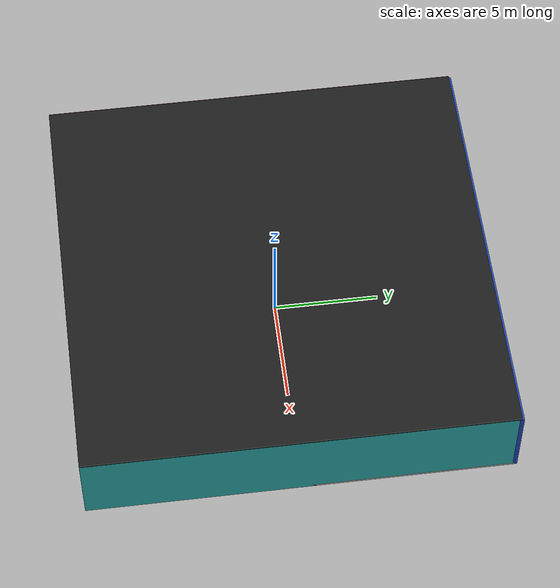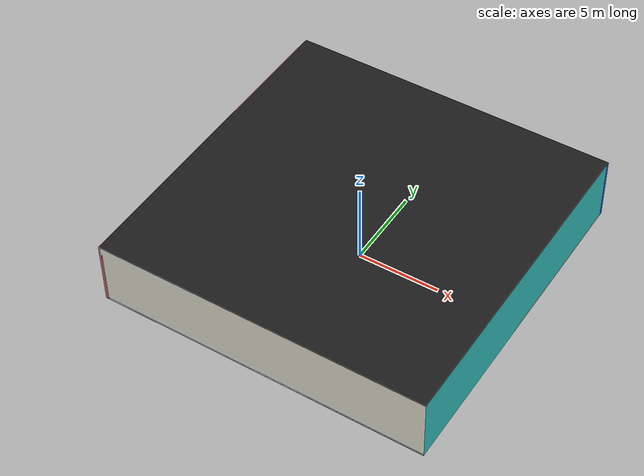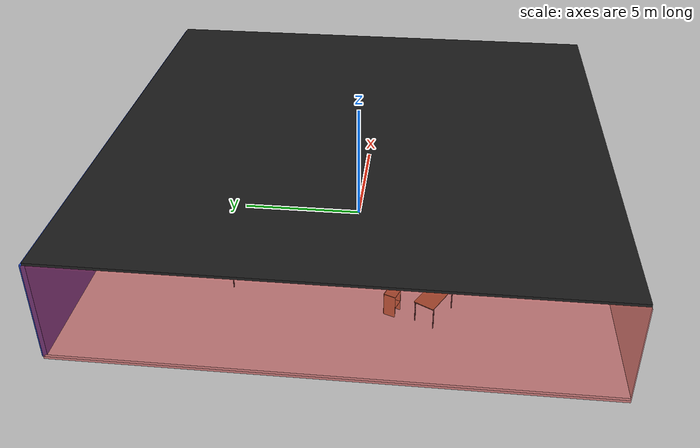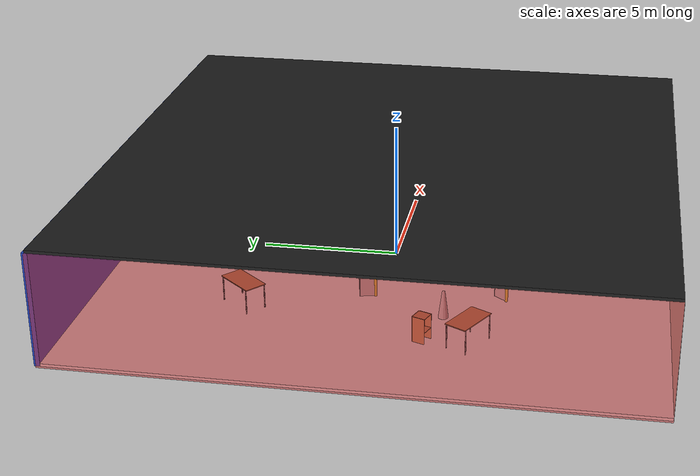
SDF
<sdf version="1.4">
 <world name="default">
  <physics type="ode">
   <max_step_size>0.001</max_step_size>
   <real_time_factor>1</real_time_factor>
   <real_time_update_rate>1000</real_time_update_rate>
   <gravity>0 0 -9.8</gravity>
  </physics>
  <scene><ambient>0.4 0.4 0.4 1</ambient><background>0.7 0.7 0.7 1</background><shadows>1</shadows></scene>
  <model name="Surrounding">
   <static>1</static>
   <link name="Ceiling">
    <collision name="Ceiling_Collision"><geometry><box><size>20 20 0.1</size></box></geometry></collision>
    <visual name="Ceiling_Visual">
     <geometry><box><size>20 20 0.1</size></box></geometry>
     <material>
      <script><uri>file://media/materials/scripts/gazebo.material</uri><name>Gazebo/Black</name></script>
     </material>
    </visual>
    <pose>0 0 4.05 0 0 0</pose>
   </link>
   <link name="Wall_South">
    <collision name="Wall_South_Collision">
     <geometry><box><size>20 0 4</size></box></geometry>
     <pose>0 0 2 0 -0 0</pose>
    </collision>
    <visual name="Wall_South_Visual">
     <pose>0 0 2 0 -0 0</pose>
     <geometry><box><size>20 0 4</size></box></geometry>
     <material>
      <script><uri>file://media/materials/scripts/gazebo.material</uri><name>Gazebo/PaintedWall</name></script>
     </material>
    </visual>
    <velocity_decay><linear>0</linear><angular>0</angular></velocity_decay>
    <pose>0 -10 0 0 -0 0</pose>
   </link>
   <link name="Wall_East">
    <collision name="Wall_21_Collision">
     <geometry><box><size>20 0 4</size></box></geometry>
     <pose>0 0 2 0 -0 0</pose>
    </collision>
    <visual name="Wall_21_Visual">
     <pose>0 0 2 0 -0 0</pose>
     <geometry><box><size>20 0 4</size></box></geometry>
     <material>
      <script>
       <uri>file://media/materials/scripts/gazebo.material</uri>
       <name>Gazebo/TurquoiseGlowOutline</name>
      </script>
     </material>
    </visual>
    <velocity_decay><linear>0</linear><angular>0</angular></velocity_decay>
    <pose>10 0 0 0 -0 1.5708</pose>
   </link>
   <link name="Wall_North">
    <collision name="Wall_22_Collision">
     <geometry><box><size>20 0.2 4</size></box></geometry>
     <pose>0 0 2 0 -0 0</pose>
    </collision>
    <visual name="Wall_22_Visual">
     <pose>0 0 2 0 -0 0</pose>
     <geometry><box><size>20 0.2 4</size></box></geometry>
     <material>
      <script><uri>file://media/materials/scripts/gazebo.material</uri><name>Gazebo/Blue</name></script>
     </material>
    </visual>
    <velocity_decay><linear>0</linear><angular>0</angular></velocity_decay>
    <pose>0 10 0 0 -0 0</pose>
   </link>
   <link name="Wall_West">
    <collision name="Wall_23_Collision">
     <geometry><box><size>20 0.2 4</size></box></geometry>
     <pose>0 0 2 0 -0 0</pose>
    </collision>
    <visual name="Wall_23_Visual">
     <pose>0 0 2 0 -0 0</pose>
     <geometry><box><size>20 0.2 4</size></box></geometry>
     <material>
      <script><uri>file://media/materials/scripts/gazebo.material</uri><name>Gazebo/RedTransparent</name></script>
     </material>
    </visual>
    <velocity_decay><linear>0</linear><angular>0</angular></velocity_decay>
    <pose>-10 0 0 0 0 -1.5708</pose>
   </link>
   <link name="Ground_link">
    <collision name="collision">
     <pose>0 0 .05 0 -0 0</pose>
     <geometry><box><size>20 20 0.1</size></box></geometry>
    </collision>
    <visual name="visual">
     <pose>0 0 .05 0 -0 0</pose>
     <geometry><box><size>20 20 0.1</size></box></geometry>
     <material>
      <script><uri>file://media/materials/scripts/gazebo.material</uri><name>Gazebo/WhiteGlow</name></script>
     </material>
    </visual>
   </link>
   <static>1</static>
  </model>
  <spherical_coordinates>
   <surface_model>EARTH_WGS84</surface_model>
   <latitude_deg>0</latitude_deg>
   <longitude_deg>0</longitude_deg>
   <elevation>0</elevation>
   <heading_deg>0</heading_deg>
  </spherical_coordinates>
  <light name="lightball_0" type="diffuse">
   <diffuse>0.8 0.8 0.8 1</diffuse>
   <specular>0.2 0.2 0.2 1</specular>
   <attenuation>
    <range>100</range>
    <constant>0.7</constant>
    <linear>0.01</linear>
    <quadratic>0.001</quadratic>
   </attenuation>
   <direction>-0.5 0.1 -0.9</direction>
   <pose>0.320979190077 -0.855541098117 1.49449770296 0 0 0</pose>
  </light>
  <light name="lightball_1" type="diffuse">
   <diffuse>0.8 0.8 0.8 1</diffuse>
   <specular>0.2 0.2 0.2 1</specular>
   <attenuation>
    <range>100</range>
    <constant>0.7</constant>
    <linear>0.01</linear>
    <quadratic>0.001</quadratic>
   </attenuation>
   <direction>-0.5 0.1 -0.9</direction>
   <pose>-8.40888492643 4.91509880951 1.42877655758 0 0 0</pose>
  </light>
  <light name="lightball_2" type="diffuse">
   <diffuse>0.8 0.8 0.8 1</diffuse>
   <specular>0.2 0.2 0.2 1</specular>
   <attenuation>
    <range>100</range>
    <constant>0.7</constant>
    <linear>0.01</linear>
    <quadratic>0.001</quadratic>
   </attenuation>
   <direction>-0.5 0.1 -0.9</direction>
   <pose>-8.8382978898 -0.576153870328 3.21475240196 0 0 0</pose>
  </light>
  <light name="lightball_3" type="diffuse">
   <diffuse>0.8 0.8 0.8 1</diffuse>
   <specular>0.2 0.2 0.2 1</specular>
   <attenuation>
    <range>100</range>
    <constant>0.7</constant>
    <linear>0.01</linear>
    <quadratic>0.001</quadratic>
   </attenuation>
   <direction>-0.5 0.1 -0.9</direction>
   <pose>1.42345505857 4.82423537291 3.71061835667 0 0 0</pose>
  </light>
  <light name="lightball_4" type="diffuse">
   <diffuse>0.8 0.8 0.8 1</diffuse>
   <specular>0.2 0.2 0.2 1</specular>
   <attenuation>
    <range>100</range>
    <constant>0.7</constant>
    <linear>0.01</linear>
    <quadratic>0.001</quadratic>
   </attenuation>
   <direction>-0.5 0.1 -0.9</direction>
   <pose>-9.74574745872 -9.54090377068 1.90263038081 0 0 0</pose>
  </light>
  <light name="lightball_5" type="diffuse">
   <diffuse>0.8 0.8 0.8 1</diffuse>
   <specular>0.2 0.2 0.2 1</specular>
   <attenuation>
    <range>100</range>
    <constant>0.7</constant>
    <linear>0.01</linear>
    <quadratic>0.001</quadratic>
   </attenuation>
   <direction>-0.5 0.1 -0.9</direction>
   <pose>0.258606938676 -2.40805389669 3.74760890292 0 0 0</pose>
  </light>
  <light name="lightball_6" type="diffuse">
   <diffuse>0.8 0.8 0.8 1</diffuse>
   <specular>0.2 0.2 0.2 1</specular>
   <attenuation>
    <range>100</range>
    <constant>0.7</constant>
    <linear>0.01</linear>
    <quadratic>0.001</quadratic>
   </attenuation>
   <direction>-0.5 0.1 -0.9</direction>
   <pose>-2.3738885297 4.2999413824 1.65822907636 0 0 0</pose>
  </light>
  <light name="lightball_7" type="diffuse">
   <diffuse>0.8 0.8 0.8 1</diffuse>
   <specular>0.2 0.2 0.2 1</specular>
   <attenuation>
    <range>100</range>
    <constant>0.7</constant>
    <linear>0.01</linear>
    <quadratic>0.001</quadratic>
   </attenuation>
   <direction>-0.5 0.1 -0.9</direction>
   <pose>4.88623314357 -0.25491431763 1.2876094149 0 0 0</pose>
  </light>
  <light name="lightball_8" type="diffuse">
   <diffuse>0.8 0.8 0.8 1</diffuse>
   <specular>0.2 0.2 0.2 1</specular>
   <attenuation>
    <range>100</range>
    <constant>0.7</constant>
    <linear>0.01</linear>
    <quadratic>0.001</quadratic>
   </attenuation>
   <direction>-0.5 0.1 -0.9</direction>
   <pose>-8.81629042907 -9.38959572827 3.00592686252 0 0 0</pose>
  </light>
  <light name="lightball_9" type="diffuse">
   <diffuse>0.8 0.8 0.8 1</diffuse>
   <specular>0.2 0.2 0.2 1</specular>
   <attenuation>
    <range>100</range>
    <constant>0.7</constant>
    <linear>0.01</linear>
    <quadratic>0.001</quadratic>
   </attenuation>
   <direction>-0.5 0.1 -0.9</direction>
   <pose>0.276183916004 4.09411334176 2.91106350986 0 0 0</pose>
  </light>
  <include><uri>model://table</uri><pose>-6.47730001351 -3.42052531307 0 0 0 2.64125058893</pose></include>
  <include><uri>model://cabinet</uri><pose>-6.51058227978 -1.89773302912 0 0 0 1.20364973226</pose></include>
  <include>
   <uri>model://construction_cone</uri>
   <pose>-4.84088977801 -2.39414138658 0 0 0 2.24258486106</pose>
  </include>
  <include><uri>model://table</uri><pose>-4.9539612344 4.52062227211 0 0 0 0.862378148946</pose></include>
  <include>
   <uri>model://robocup_3Dsim_goal</uri>
   <pose>-2.52382946459 -5.05518852234 0 0 0 0.906795007161</pose>
  </include>
  <include>
   <uri>model://robocup_3Dsim_goal</uri>
   <pose>-2.62347710831 0.352966228209 0 0 0 1.77978438504</pose>
  </include>
  <include>
   <uri>model://construction_cone</uri>
   <pose>-1.52642710231 5.52314806945 0 0 0 2.86995057196</pose>
  </include>
  <include><uri>model://table</uri><pose>1.5473910563 5.04724865105 0 0 0 1.24350328172</pose></include>
 </world>
</sdf>

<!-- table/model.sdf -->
<sdf version="1.5">
  <model name="table">
    <static>true</static>
    <link name="link">
      <collision name="surface">
        <pose>0 0 1.0 0 0 0</pose>
        <geometry>
          <box>
            <size>1.5 0.8 0.03</size>
          </box>
        </geometry>
        <surface>
          <friction>
            <ode>
              <mu>0.6</mu>
              <mu2>0.6</mu2>
            </ode>
          </friction>
        </surface>
      </collision>
      <visual name="visual1">
        <pose>0 0 1.0 0 0 0</pose>
        <geometry>
          <box>
            <size>1.5 0.8 0.03</size>
          </box>
        </geometry>
        <material>
          <script>
            <uri>model://media/materials/scripts/gazebo.material</uri>
            <name>Gazebo/Wood</name>
          </script>
        </material>
      </visual>
      <collision name="front_left_leg">
        <pose>0.68 0.38 0.5 0 0 0</pose>
        <geometry>
          <cylinder>
            <radius>0.02</radius>
            <length>1.0</length>
          </cylinder>
        </geometry>
      </collision>
      <visual name="front_left_leg">
        <pose>0.68 0.38 0.5 0 0 0</pose>
        <geometry>
          <cylinder>
            <radius>0.02</radius>
            <length>1.0</length>
          </cylinder>
        </geometry>
        <material>
          <script>
            <uri>model://media/materials/scripts/gazebo.material</uri>
            <name>Gazebo/Grey</name>
          </script>
        </material>
      </visual>
      <collision name="front_right_leg">
        <pose>0.68 -0.38 0.5 0 0 0</pose>
        <geometry>
          <cylinder>
            <radius>0.02</radius>
            <length>1.0</length>
          </cylinder>
        </geometry>
      </collision>
      <visual name="front_right_leg">
        <pose>0.68 -0.38 0.5 0 0 0</pose>
        <geometry>
          <cylinder>
            <radius>0.02</radius>
            <length>1.0</length>
          </cylinder>
        </geometry>
        <material>
          <script>
            <uri>model://media/materials/scripts/gazebo.material</uri>
            <name>Gazebo/Grey</name>
          </script>
        </material>
      </visual>
      <collision name="back_right_leg">
        <pose>-0.68 -0.38 0.5 0 0 0</pose>
        <geometry>
          <cylinder>
            <radius>0.02</radius>
            <length>1.0</length>
          </cylinder>
        </geometry>
      </collision>
      <visual name="back_right_leg">
        <pose>-0.68 -0.38 0.5 0 0 0</pose>
        <geometry>
          <cylinder>
            <radius>0.02</radius>
            <length>1.0</length>
          </cylinder>
        </geometry>
        <material>
          <script>
            <uri>model://media/materials/scripts/gazebo.material</uri>
            <name>Gazebo/Grey</name>
          </script>
        </material>
      </visual>
      <collision name="back_left_leg">
        <pose>-0.68 0.38 0.5 0 0 0</pose>
        <geometry>
          <cylinder>
            <radius>0.02</radius>
            <length>1.0</length>
          </cylinder>
        </geometry>
      </collision>
      <visual name="back_left_leg">
        <pose>-0.68 0.38 0.5 0 0 0</pose>
        <geometry>
          <cylinder>
            <radius>0.02</radius>
            <length>1.0</length>
          </cylinder>
        </geometry>
        <material>
          <script>
            <uri>model://media/materials/scripts/gazebo.material</uri>
            <name>Gazebo/Grey</name>
          </script>
        </material>
      </visual>
    </link>
  </model>
</sdf>

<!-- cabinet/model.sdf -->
<sdf version="1.5">
  <model name="cabinet">
    <static>true</static>
    <link name="cabinet_bottom_plate">
      <inertial>
        <pose>0 0 -1 0 0 0</pose>
        <inertia>
          <ixx>2.050000</ixx>
          <ixy>0</ixy>
          <ixz>0</ixz>
          <iyy>2.050000</iyy>
          <iyz>0</iyz>
          <izz>2.050000</izz>
        </inertia>
        <mass>25.000000</mass>
      </inertial>
      <collision name="cabinet_bottom_plate_geom">
        <pose>0 0 0.010000 0 0 0</pose>
        <geometry>
          <box>
            <size>0.450000 0.450000 0.020000</size>
          </box>
        </geometry>
      </collision>
      <visual name="cabinet_bottom_plate_geom_visual">
        <pose>0 0 0.010000 0 0 0</pose>
        <geometry>
          <box>
            <size>0.450000 0.450000 0.020000</size>
          </box>
        </geometry>
        <material>
          <script>
            <uri>model://media/materials/scripts/gazebo.material</uri>
            <name>Gazebo/Wood</name>
          </script>
        </material>
      </visual>
      <collision name="cabinet_bottom_plate_geom_cabinet_back_plate">
        <pose>0.235000 0 0.510000 0 0 0</pose>
        <geometry>
          <box>
            <size>0.020000 0.450000 1.020000</size>
          </box>
        </geometry>
      </collision>
      <visual name="cabinet_bottom_plate_geom_cabinet_back_plate_visual">
        <pose>0.235000 0 0.510000 0 0 0</pose>
        <geometry>
          <box>
            <size>0.020000 0.450000 1.020000</size>
          </box>
        </geometry>
        <material>
          <script>
            <uri>model://media/materials/scripts/gazebo.material</uri>
            <name>Gazebo/Wood</name>
          </script>
        </material>
      </visual>
      <collision name="cabinet_bottom_plate_geom_cabinet_left_plate">
        <pose>0 0.235000 0.510000 0 0 0</pose>
        <geometry>
          <box>
            <size>0.450000 0.020000 1.020000</size>
          </box>
        </geometry>
      </collision>
      <visual name="cabinet_bottom_plate_geom_cabinet_left_plate_visual">
        <pose>0 0.235000 0.510000 0 0 0</pose>
        <geometry>
          <box>
            <size>0.450000 0.020000 1.020000</size>
          </box>
        </geometry>
        <material>
          <script>
            <uri>model://media/materials/scripts/gazebo.material</uri>
            <name>Gazebo/Wood</name>
          </script>
        </material>
      </visual>
      <collision name="cabinet_bottom_plate_geom_cabinet_middle_plate">
        <pose>0 0 0.510000 0 0 0</pose>
        <geometry>
          <box>
            <size>0.450000 0.450000 0.020000</size>
          </box>
        </geometry>
      </collision>
      <visual name="cabinet_bottom_plate_geom_cabinet_middle_plate_visual">
        <pose>0 0 0.510000 0 0 0</pose>
        <geometry>
          <box>
            <size>0.450000 0.450000 0.020000</size>
          </box>
        </geometry>
        <material>
          <script>
            <uri>model://media/materials/scripts/gazebo.material</uri>
            <name>Gazebo/Wood</name>
          </script>
        </material>
      </visual>
      <collision name="cabinet_bottom_plate_geom_cabinet_right_plate">
        <pose>0 -0.235000 0.510000 0 0 0</pose>
        <geometry>
          <box>
            <size>0.450000 0.020000 1.020000</size>
          </box>
        </geometry>
      </collision>
      <visual name="cabinet_bottom_plate_geom_cabinet_right_plate_visual">
        <pose>0 -0.235000 0.510000 0 0 0</pose>
        <geometry>
          <box>
            <size>0.450000 0.020000 1.020000</size>
          </box>
        </geometry>
        <material>
          <script>
            <uri>model://media/materials/scripts/gazebo.material</uri>
            <name>Gazebo/Wood</name>
          </script>
        </material>
      </visual>
      <collision name="cabinet_bottom_plate_geom_cabinet_top_plate">
        <pose>0 0 1.010000 0 0 0</pose>
        <geometry>
          <box>
            <size>0.450000 0.450000 0.020000</size>
          </box>
        </geometry>
      </collision>
      <visual name="cabinet_bottom_plate_geom_cabinet_top_plate_visual">
        <pose>0 0 1.010000 0 0 0</pose>
        <geometry>
          <box>
            <size>0.450000 0.450000 0.020000</size>
          </box>
        </geometry>
        <material>
          <script>
            <uri>model://media/materials/scripts/gazebo.material</uri>
            <name>Gazebo/Wood</name>
          </script>
        </material>
      </visual>
    </link>
  </model>
</sdf>

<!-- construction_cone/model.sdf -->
<sdf version="1.5">
  <model name="Construction Cone">
    <link name="link">
      <collision name="collision">
        <geometry>
          <mesh>
            <scale>10 10 10</scale>
            <uri>file://isr-testbed/construction_cone/meshes/construction_cone.dae</uri>
          </mesh>
        </geometry>
      </collision>
      <visual name="visual">
        <geometry>
          <mesh>
            <scale>10 10 10</scale>
            <uri>file://isr-testbed/construction_cone/meshes/construction_cone.dae</uri>
          </mesh>
        </geometry>
      </visual>
    </link>
  </model>
</sdf>

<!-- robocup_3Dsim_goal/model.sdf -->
<sdf version="1.5">
  <model name="robocup_3d_goal">
    <static>true</static>
    <link name="left_post">
      <pose>0 1.05 0.45 0 0 0</pose>
      <collision name="collision">
        <geometry>
          <cylinder>
            <radius>0.05</radius>
            <length>0.9</length>
          </cylinder>
        </geometry>
      </collision>
      <visual name="visual">
        <geometry>
          <cylinder>
            <radius>0.05</radius>
            <length>0.9</length>
          </cylinder>
        </geometry>
        <material>
          <script>
            <uri>file://media/materials/scripts/gazebo.material</uri>
            <name>Gazebo/ZincYellow</name>
          </script>
        </material>
      </visual>
    </link>
    <link name="left_support_horiz_lower">
      <pose>0.30 1.05 0.01 0 0 0</pose>
      <collision name="collision">
        <geometry>
          <box>
            <size>0.50 0.02 0.02</size>
          </box>
        </geometry>
      </collision>
      <visual name="visual">
        <geometry>
          <box>
            <size>0.50 0.02 0.02</size>
          </box>
        </geometry>
        <material>
          <script>
            <uri>file://media/materials/scripts/gazebo.material</uri>
            <name>Gazebo/White</name>
          </script>
        </material>
      </visual>
    </link>
    <link name="left_support_horiz_upper">
      <pose>0.30 1.05 0.79 0 0 0</pose>
      <collision name="collision">
        <geometry>
          <box>
            <size>0.50 0.02 0.02</size>
          </box>
        </geometry>
      </collision>
      <visual name="visual">
        <geometry>
          <box>
            <size>0.50 0.02 0.02</size>
          </box>
        </geometry>
        <material>
          <script>
            <uri>file://media/materials/scripts/gazebo.material</uri>
            <name>Gazebo/White</name>
          </script>
        </material>
      </visual>
    </link>
    <link name="left_support_vertical">
      <pose>0.56 1.05 0.4 0 1.5708 0</pose>
      <collision name="collision">
        <geometry>
          <box>
            <size>0.80 0.02 0.02</size>
          </box>
        </geometry>
      </collision>
      <visual name="visual">
        <geometry>
          <box>
            <size>0.80 0.02 0.02</size>
          </box>
        </geometry>
        <material>
          <script>
            <uri>file://media/materials/scripts/gazebo.material</uri>
            <name>Gazebo/White</name>
          </script>
        </material>
      </visual>
    </link>
    <link name="right_support_horiz_lower">
      <pose>0.30 -1.05 0.01 0 0 0</pose>
      <collision name="collision">
        <geometry>
          <box>
            <size>0.50 0.02 0.02</size>
          </box>
        </geometry>
      </collision>
      <visual name="visual">
        <geometry>
          <box>
            <size>0.50 0.02 0.02</size>
          </box>
        </geometry>
        <material>
          <script>
            <uri>file://media/materials/scripts/gazebo.material</uri>
            <name>Gazebo/White</name>
          </script>
        </material>
      </visual>
    </link>
    <link name="right_support_horiz_upper">
      <pose>0.30 -1.05 0.79 0 0 0</pose>
      <collision name="collision">
        <geometry>
          <box>
            <size>0.50 0.02 0.02</size>
          </box>
        </geometry>
      </collision>
      <visual name="visual">
        <geometry>
          <box>
            <size>0.50 0.02 0.02</size>
          </box>
        </geometry>
        <material>
          <script>
            <uri>file://media/materials/scripts/gazebo.material</uri>
            <name>Gazebo/White</name>
          </script>
        </material>
      </visual>
    </link>
    <link name="right_support_vertical">
      <pose>0.56 -1.05 0.4 0 1.5708 0</pose>
      <collision name="collision">
        <geometry>
          <box>
            <size>0.80 0.02 0.02</size>
          </box>
        </geometry>
      </collision>
      <visual name="visual">
        <geometry>
          <box>
            <size>0.80 0.02 0.02</size>
          </box>
        </geometry>
        <material>
          <script>
            <uri>file://media/materials/scripts/gazebo.material</uri>
            <name>Gazebo/White</name>
          </script>
        </material>
      </visual>
    </link>
    <link name="center_support_horiz_lower">
      <pose>0.56 0 0.01 0 1.5708 0</pose>
      <collision name="collision">
        <geometry>
          <box>
            <size>0.02 2.08 0.02</size>
          </box>
        </geometry>
      </collision>
      <visual name="visual">
        <geometry>
          <box>
            <size>0.02 2.08 0.02</size>
          </box>
        </geometry>
        <material>
          <script>
            <uri>file://media/materials/scripts/gazebo.material</uri>
            <name>Gazebo/White</name>
          </script>
        </material>
      </visual>
    </link>
    <link name="center_support_horiz_upper">
      <pose>0.56 0 0.79 0 1.5708 0</pose>
      <collision name="collision">
        <geometry>
          <box>
            <size>0.02 2.08 0.02</size>
          </box>
        </geometry>
      </collision>
      <visual name="visual">
        <geometry>
          <box>
            <size>0.02 2.08 0.02</size>
          </box>
        </geometry>
        <material>
          <script>
            <uri>file://media/materials/scripts/gazebo.material</uri>
            <name>Gazebo/White</name>
          </script>
        </material>
      </visual>
    </link>
    <link name="right_post">
      <pose>0 -1.05 0.45 0 0 0</pose>
      <collision name="collision">
        <geometry>
          <cylinder>
            <radius>0.05</radius>
            <length>0.9</length>
          </cylinder>
        </geometry>
      </collision>
      <visual name="visual">
        <geometry>
          <cylinder>
            <radius>0.05</radius>
            <length>0.9</length>
          </cylinder>
        </geometry>
        <material>
          <script>
            <uri>file://media/materials/scripts/gazebo.material</uri>
            <name>Gazebo/ZincYellow</name>
          </script>
        </material>
      </visual>
    </link>
    <link name="crossbar">
      <pose>0 0 0.85 1.57 1.57 0</pose>
      <collision name="collision">
        <geometry>
          <cylinder>
            <radius>0.05</radius>
            <length>2.0</length>
          </cylinder>
        </geometry>
      </collision>
      <visual name="visual">
        <geometry>
          <cylinder>
            <radius>0.05</radius>
            <length>2.0</length>
          </cylinder>
        </geometry>
        <material>
          <script>
            <uri>file://media/materials/scripts/gazebo.material</uri>
            <name>Gazebo/ZincYellow</name>
          </script>
        </material>
      </visual>
    </link>
    <link name="center_net">
      <pose>0.56 0 0.40 0 0 0</pose>
      <collision name="collision">
        <geometry>
          <box>
            <size>0.01 2.1 0.80</size>
          </box>
        </geometry>
      </collision>
      <visual name="visual">
        <geometry>
          <box>
            <size>0.01 2.1 0.80</size>
          </box>
        </geometry>
        <material>
          <script>
            <uri>model://../model_source/models/robocup09_spl_field/materials/scripts/</uri>
            <uri>model://../model_source/models/robocup09_spl_field/materials/textures/</uri>
            <name>RoboCup/Net</name>
          </script>
        </material>
      </visual>
    </link>
    <link name="left_net">
      <pose>0.30 1.05 0.40 0 0 0</pose>
      <collision name="collision">
        <geometry>
          <box>
            <size>0.50 0.01 0.76</size>
          </box>
        </geometry>
      </collision>
      <visual name="visual">
        <geometry>
          <box>
            <size>0.50 0.01 0.76</size>
          </box>
        </geometry>
        <material>
          <script>
            <uri>model://../model_source/models/robocup09_spl_field/materials/scripts/</uri>
            <uri>model://../model_source/models/robocup09_spl_field/materials/textures/</uri>
            <name>RoboCup/Net</name>
          </script>
        </material>
      </visual>
    </link>
    <link name="right_net">
      <pose>0.30 -1.05 0.40 0 0 0</pose>
      <collision name="collision">
        <geometry>
          <box>
            <size>0.50 0.01 0.76</size>
          </box>
        </geometry>
      </collision>
      <visual name="visual">
        <geometry>
          <box>
            <size>0.50 0.01 0.76</size>
          </box>
        </geometry>
        <material>
          <script>
            <uri>model://../model_source/models/robocup09_spl_field/materials/scripts/</uri>
            <uri>model://../model_source/models/robocup09_spl_field/materials/textures/</uri>
            <name>RoboCup/Net</name>
          </script>
        </material>
      </visual>
    </link>
  </model>
</sdf>
